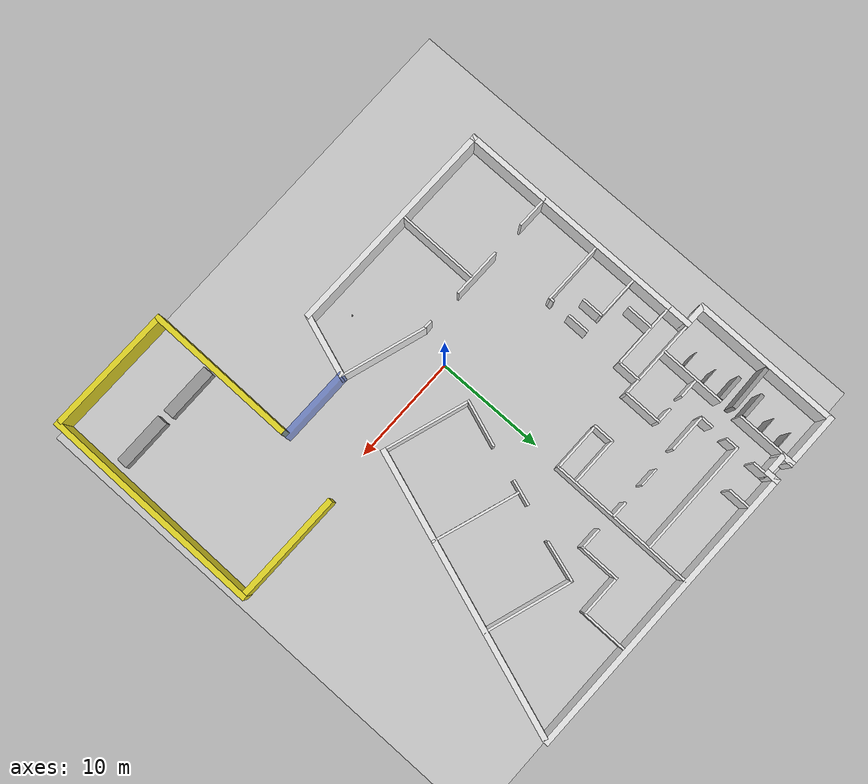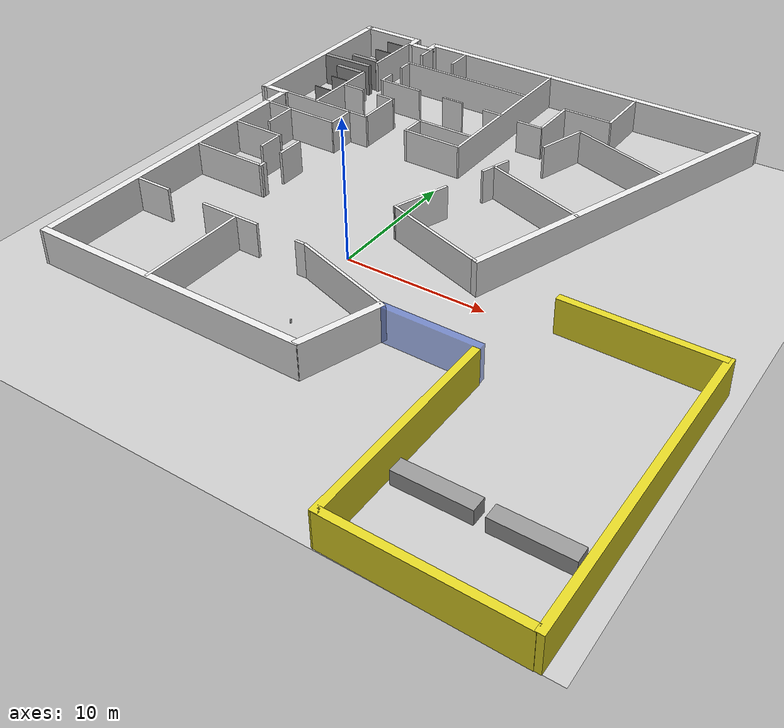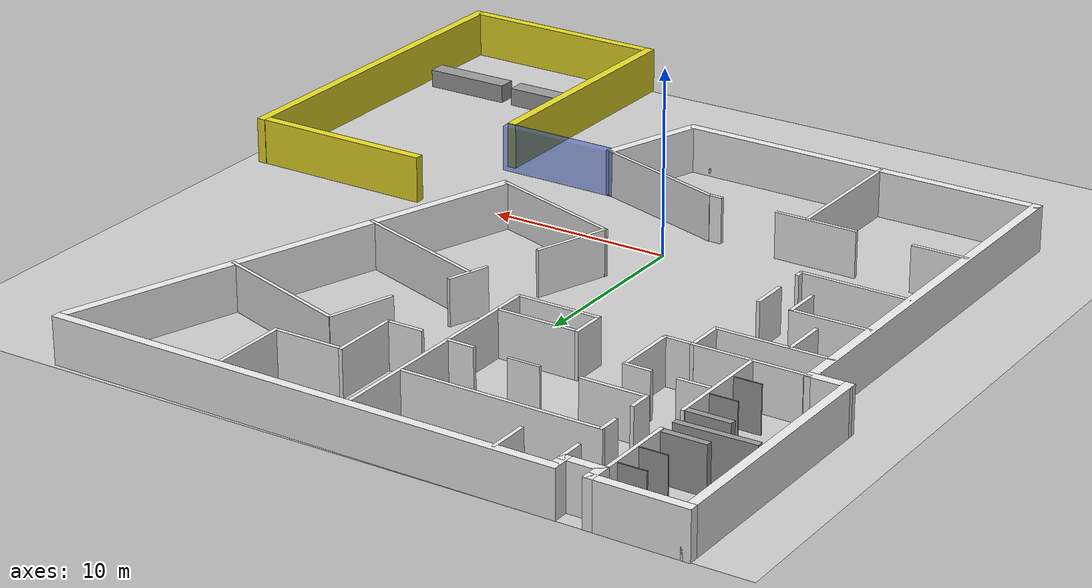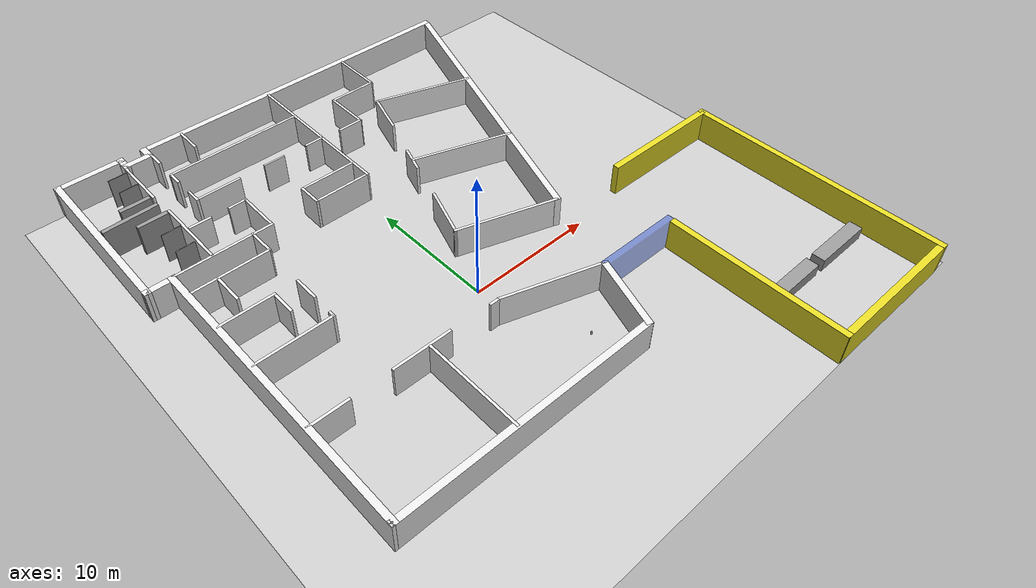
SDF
<sdf version="1.7">
 <world name="default">
  <light name="sun" type="directional">
   <pose>0 0 10 0 -0 0</pose>
   <diffuse>0.8 0.8 0.8 1</diffuse>
   <specular>0.2 0.2 0.2 1</specular>
   <attenuation>
    <range>1000</range>
    <constant>0.9</constant>
    <linear>0.01</linear>
    <quadratic>0.001</quadratic>
   </attenuation>
   <direction>-0.5 0.1 -0.9</direction>
   <spot><inner_angle>0</inner_angle><outer_angle>0</outer_angle><falloff>0</falloff></spot>
  </light>
  <gravity>0 0 -9.8</gravity>
  <magnetic_field>6e-06 2.3e-05 -4.2e-05</magnetic_field>
  <atmosphere type="adiabatic"/>
  <physics type="ode">
   <max_step_size>0.001</max_step_size>
   <real_time_factor>1</real_time_factor>
   <real_time_update_rate>1000</real_time_update_rate>
  </physics>
  <scene><ambient>0.4 0.4 0.4 1</ambient><background>0.7 0.7 0.7 1</background><shadows>1</shadows></scene>
  <spherical_coordinates>
   <surface_model>EARTH_WGS84</surface_model>
   <latitude_deg>0</latitude_deg>
   <longitude_deg>0</longitude_deg>
   <elevation>0</elevation>
   <heading_deg>0</heading_deg>
  </spherical_coordinates>
  <model name="hospital_wall">
   <pose>3.70516 3.23402 0 0 -0 -1.57977</pose>
   <link name="Wall_0">
    <collision name="Wall_0_Collision">
     <geometry><box><size>27.85 0.5 2.5</size></box></geometry>
     <pose>0 0 1.25 0 -0 0</pose>
    </collision>
    <visual name="Wall_0_Visual">
     <pose>0 0 1.25 0 -0 0</pose>
     <geometry><box><size>27.85 0.5 2.5</size></box></geometry>
     <material>
      <script><uri>file://media/materials/scripts/gazebo.material</uri><name>Gazebo/White</name></script>
      <ambient>1 1 1 1</ambient>
     </material>
     <meta><layer>0</layer></meta>
    </visual>
    <pose>-22.6945 -0.556827 0 0 -0 -1.57078</pose>
   </link>
   <link name="Wall_101">
    <collision name="Wall_101_Collision">
     <geometry><box><size>1.25 0.2 2.5</size></box></geometry>
     <pose>0 0 1.25 0 -0 0</pose>
    </collision>
    <visual name="Wall_101_Visual">
     <pose>0 0 1.25 0 -0 0</pose>
     <geometry><box><size>1.25 0.2 2.5</size></box></geometry>
     <material>
      <script><uri>file://media/materials/scripts/gazebo.material</uri><name>Gazebo/White</name></script>
      <ambient>1 1 1 1</ambient>
     </material>
     <meta><layer>0</layer></meta>
    </visual>
    <pose>-18.1899 -14.0971 0 0 -0 3.14159</pose>
   </link>
   <link name="Wall_103">
    <collision name="Wall_103_Collision">
     <geometry><box><size>1.30009 0.2 2.5</size></box></geometry>
     <pose>0 0 1.25 0 -0 0</pose>
    </collision>
    <visual name="Wall_103_Visual">
     <pose>0 0 1.25 0 -0 0</pose>
     <geometry><box><size>1.30009 0.2 2.5</size></box></geometry>
     <material>
      <script><uri>file://media/materials/scripts/gazebo.material</uri><name>Gazebo/White</name></script>
      <ambient>1 1 1 1</ambient>
     </material>
     <meta><layer>0</layer></meta>
    </visual>
    <pose>-15.5522 -14.0461 0 0 -0 0</pose>
   </link>
   <link name="Wall_105">
    <collision name="Wall_105_Collision">
     <geometry><box><size>3.5 0.2 2.5</size></box></geometry>
     <pose>0 0 1.25 0 -0 0</pose>
    </collision>
    <visual name="Wall_105_Visual">
     <pose>0 0 1.25 0 -0 0</pose>
     <geometry><box><size>3.5 0.2 2.5</size></box></geometry>
     <material>
      <script><uri>file://media/materials/scripts/gazebo.material</uri><name>Gazebo/White</name></script>
      <ambient>1 1 1 1</ambient>
     </material>
     <meta><layer>0</layer></meta>
    </visual>
    <pose>-15.0024 -12.3017 0 0 -0 -1.5708</pose>
   </link>
   <link name="Wall_107">
    <collision name="Wall_107_Collision">
     <geometry><box><size>2.25 0.2 2.5</size></box></geometry>
     <pose>0 0 1.25 0 -0 0</pose>
    </collision>
    <visual name="Wall_107_Visual">
     <pose>0 0 1.25 0 -0 0</pose>
     <geometry><box><size>2.25 0.2 2.5</size></box></geometry>
     <material>
      <script><uri>file://media/materials/scripts/gazebo.material</uri><name>Gazebo/White</name></script>
      <ambient>1 1 1 1</ambient>
     </material>
     <meta><layer>0</layer></meta>
    </visual>
    <pose>-21.5791 -11.151 0 0 -0 3.14159</pose>
   </link>
   <link name="Wall_109">
    <collision name="Wall_109_Collision">
     <geometry><box><size>1.5 0.2 2.5</size></box></geometry>
     <pose>0 0 1.25 0 -0 0</pose>
    </collision>
    <visual name="Wall_109_Visual">
     <pose>0 0 1.25 0 -0 0</pose>
     <geometry><box><size>1.5 0.2 2.5</size></box></geometry>
     <material>
      <script><uri>file://media/materials/scripts/gazebo.material</uri><name>Gazebo/White</name></script>
      <ambient>1 1 1 1</ambient>
     </material>
     <meta><layer>0</layer></meta>
    </visual>
    <pose>-12.697 -12.138 0 0 -0 1.5708</pose>
   </link>
   <link name="Wall_111">
    <collision name="Wall_111_Collision">
     <geometry><box><size>6.05 0.2 2.5</size></box></geometry>
     <pose>0 0 1.25 0 -0 0</pose>
    </collision>
    <visual name="Wall_111_Visual">
     <pose>0 0 1.25 0 -0 0</pose>
     <geometry><box><size>6.05 0.2 2.5</size></box></geometry>
     <material>
      <script><uri>file://media/materials/scripts/gazebo.material</uri><name>Gazebo/White</name></script>
      <ambient>1 1 1 1</ambient>
     </material>
     <meta><layer>0</layer></meta>
    </visual>
    <pose>-12.3324 -16.088 0 0 -0 0</pose>
   </link>
   <link name="Wall_113">
    <collision name="Wall_113_Collision">
     <geometry><box><size>1.75 0.2 2.5</size></box></geometry>
     <pose>0 0 1.25 0 -0 0</pose>
    </collision>
    <visual name="Wall_113_Visual">
     <pose>0 0 1.25 0 -0 0</pose>
     <geometry><box><size>1.75 0.2 2.5</size></box></geometry>
     <material>
      <script><uri>file://media/materials/scripts/gazebo.material</uri><name>Gazebo/White</name></script>
      <ambient>1 1 1 1</ambient>
     </material>
     <meta><layer>0</layer></meta>
    </visual>
    <pose>-12.7232 -15.1011 0 0 -0 -1.5708</pose>
   </link>
   <link name="Wall_115">
    <collision name="Wall_115_Collision">
     <geometry><box><size>4.5 0.2 2.5</size></box></geometry>
     <pose>0 0 1.25 0 -0 0</pose>
    </collision>
    <visual name="Wall_115_Visual">
     <pose>0 0 1.25 0 -0 0</pose>
     <geometry><box><size>4.5 0.2 2.5</size></box></geometry>
     <material>
      <script><uri>file://media/materials/scripts/gazebo.material</uri><name>Gazebo/White</name></script>
      <ambient>1 1 1 1</ambient>
     </material>
     <meta><layer>0</layer></meta>
    </visual>
    <pose>-10.9872 -5.67707 0 0 -0 1.5708</pose>
   </link>
   <link name="Wall_117">
    <collision name="Wall_117_Collision">
     <geometry><box><size>4.5 0.2 2.5</size></box></geometry>
     <pose>0 0 1.25 0 -0 0</pose>
    </collision>
    <visual name="Wall_117_Visual">
     <pose>0 0 1.25 0 -0 0</pose>
     <geometry><box><size>4.5 0.2 2.5</size></box></geometry>
     <material>
      <script><uri>file://media/materials/scripts/gazebo.material</uri><name>Gazebo/White</name></script>
      <ambient>1 1 1 1</ambient>
     </material>
     <meta><layer>0</layer></meta>
    </visual>
    <pose>-9.1948 -5.67532 0 0 -0 1.5708</pose>
   </link>
   <link name="Wall_12">
    <collision name="Wall_12_Collision">
     <geometry><box><size>14 0.5 2.5</size></box></geometry>
     <pose>0 0 1.25 0 -0 0</pose>
    </collision>
    <visual name="Wall_12_Visual">
     <pose>0 0 1.25 0 -0 0</pose>
     <geometry><box><size>14 0.5 2.5</size></box></geometry>
     <material>
      <script><uri>file://media/materials/scripts/gazebo.material</uri><name>Gazebo/White</name></script>
      <ambient>1 1 1 1</ambient>
     </material>
     <meta><layer>0</layer></meta>
    </visual>
    <pose>-15.9442 -20.8921 0 0 -0 0</pose>
   </link>
   <link name="Wall_120">
    <collision name="Wall_120_Collision">
     <geometry><box><size>2 0.2 2.5</size></box></geometry>
     <pose>0 0 1.25 0 -0 0</pose>
    </collision>
    <visual name="Wall_120_Visual">
     <pose>0 0 1.25 0 -0 0</pose>
     <geometry><box><size>2 0.2 2.5</size></box></geometry>
     <material>
      <script><uri>file://media/materials/scripts/gazebo.material</uri><name>Gazebo/White</name></script>
      <ambient>1 1 1 1</ambient>
     </material>
     <meta><layer>0</layer></meta>
    </visual>
    <pose>-10.0892 -7.82789 0 0 -0 0</pose>
   </link>
   <link name="Wall_122">
    <collision name="Wall_122_Collision">
     <geometry><box><size>2.5 0.2 2.5</size></box></geometry>
     <pose>0 0 1.25 0 -0 0</pose>
    </collision>
    <visual name="Wall_122_Visual">
     <pose>0 0 1.25 0 -0 0</pose>
     <geometry><box><size>2.5 0.2 2.5</size></box></geometry>
     <material>
      <script><uri>file://media/materials/scripts/gazebo.material</uri><name>Gazebo/White</name></script>
      <ambient>1 1 1 1</ambient>
     </material>
     <meta><layer>0</layer></meta>
    </visual>
    <pose>-6.02163 -16.8589 0 0 -0 3.14159</pose>
   </link>
   <link name="Wall_124">
    <collision name="Wall_124_Collision">
     <geometry><box><size>4.30001 0.2 2.5</size></box></geometry>
     <pose>0 0 1.25 0 -0 0</pose>
    </collision>
    <visual name="Wall_124_Visual">
     <pose>0 0 1.25 0 -0 0</pose>
     <geometry><box><size>4.30001 0.2 2.5</size></box></geometry>
     <material>
      <script><uri>file://media/materials/scripts/gazebo.material</uri><name>Gazebo/White</name></script>
      <ambient>1 1 1 1</ambient>
     </material>
     <meta><layer>0</layer></meta>
    </visual>
    <pose>-3.60823 -16.9331 0 0 -0 -1.5708</pose>
   </link>
   <link name="Wall_126">
    <collision name="Wall_126_Collision">
     <geometry><box><size>2 0.2 2.5</size></box></geometry>
     <pose>0 0 1.25 0 -0 0</pose>
    </collision>
    <visual name="Wall_126_Visual">
     <pose>0 0 1.25 0 -0 0</pose>
     <geometry><box><size>2 0.2 2.5</size></box></geometry>
     <material>
      <script><uri>file://media/materials/scripts/gazebo.material</uri><name>Gazebo/White</name></script>
      <ambient>1 1 1 1</ambient>
     </material>
     <meta><layer>0</layer></meta>
    </visual>
    <pose>-2.64995 -14.8874 0 0 -0 3.14159</pose>
   </link>
   <link name="Wall_128">
    <collision name="Wall_128_Collision">
     <geometry><box><size>0.55 0.2 2.5</size></box></geometry>
     <pose>0 0 1.25 0 -0 0</pose>
    </collision>
    <visual name="Wall_128_Visual">
     <pose>0 0 1.25 0 -0 0</pose>
     <geometry><box><size>0.55 0.2 2.5</size></box></geometry>
     <material>
      <script><uri>file://media/materials/scripts/gazebo.material</uri><name>Gazebo/White</name></script>
      <ambient>1 1 1 1</ambient>
     </material>
     <meta><layer>0</layer></meta>
    </visual>
    <pose>0.233926 -13.1551 0 0 -0 0</pose>
   </link>
   <link name="Wall_130">
    <collision name="Wall_130_Collision">
     <geometry><box><size>6 0.2 2.5</size></box></geometry>
     <pose>0 0 1.25 0 -0 0</pose>
    </collision>
    <visual name="Wall_130_Visual">
     <pose>0 0 1.25 0 -0 0</pose>
     <geometry><box><size>6 0.2 2.5</size></box></geometry>
     <material>
      <script><uri>file://media/materials/scripts/gazebo.material</uri><name>Gazebo/White</name></script>
      <ambient>1 1 1 1</ambient>
     </material>
     <meta><layer>0</layer></meta>
    </visual>
    <pose>0.407767 -16.0541 0 0 -0 1.5708</pose>
   </link>
   <link name="Wall_132">
    <collision name="Wall_132_Collision">
     <geometry><box><size>4.25 0.2 2.5</size></box></geometry>
     <pose>0 0 1.25 0 -0 0</pose>
    </collision>
    <visual name="Wall_132_Visual">
     <pose>0 0 1.25 0 -0 0</pose>
     <geometry><box><size>4.25 0.2 2.5</size></box></geometry>
     <material>
      <script><uri>file://media/materials/scripts/gazebo.material</uri><name>Gazebo/White</name></script>
      <ambient>1 1 1 1</ambient>
     </material>
     <meta><layer>0</layer></meta>
    </visual>
    <pose>-20.4132 3.82393 0 0 -0 0</pose>
   </link>
   <link name="Wall_134">
    <collision name="Wall_134_Collision">
     <geometry><box><size>3.75 0.2 2.5</size></box></geometry>
     <pose>0 0 1.25 0 -0 0</pose>
    </collision>
    <visual name="Wall_134_Visual">
     <pose>0 0 1.25 0 -0 0</pose>
     <geometry><box><size>3.75 0.2 2.5</size></box></geometry>
     <material>
      <script><uri>file://media/materials/scripts/gazebo.material</uri><name>Gazebo/White</name></script>
      <ambient>1 1 1 1</ambient>
     </material>
     <meta><layer>0</layer></meta>
    </visual>
    <pose>-18.387 1.94161 0 0 -0 1.5708</pose>
   </link>
   <link name="Wall_136">
    <collision name="Wall_136_Collision">
     <geometry><box><size>3.75 0.2 2.5</size></box></geometry>
     <pose>0 0 1.25 0 -0 0</pose>
    </collision>
    <visual name="Wall_136_Visual">
     <pose>0 0 1.25 0 -0 0</pose>
     <geometry><box><size>3.75 0.2 2.5</size></box></geometry>
     <material>
      <script><uri>file://media/materials/scripts/gazebo.material</uri><name>Gazebo/White</name></script>
      <ambient>1 1 1 1</ambient>
     </material>
     <meta><layer>0</layer></meta>
    </visual>
    <pose>-16.6135 0.087292 0 0 -0 3.14159</pose>
   </link>
   <link name="Wall_138">
    <collision name="Wall_138_Collision">
     <geometry><box><size>2 0.2 2.5</size></box></geometry>
     <pose>0 0 1.25 0 -0 0</pose>
    </collision>
    <visual name="Wall_138_Visual">
     <pose>0 0 1.25 0 -0 0</pose>
     <geometry><box><size>2 0.2 2.5</size></box></geometry>
     <material>
      <script><uri>file://media/materials/scripts/gazebo.material</uri><name>Gazebo/White</name></script>
      <ambient>1 1 1 1</ambient>
     </material>
     <meta><layer>0</layer></meta>
    </visual>
    <pose>-14.8374 -0.881729 0 0 -0 1.5708</pose>
   </link>
   <link name="Wall_15">
    <collision name="Wall_15_Collision">
     <geometry><box><size>2.3504 0.5 2.5</size></box></geometry>
     <pose>0 0 1.25 0 -0 0</pose>
    </collision>
    <visual name="Wall_15_Visual">
     <pose>0 0 1.25 0 -0 0</pose>
     <geometry><box><size>2.3504 0.5 2.5</size></box></geometry>
     <material>
      <script><uri>file://media/materials/scripts/gazebo.material</uri><name>Gazebo/White</name></script>
      <ambient>1 1 1 1</ambient>
     </material>
     <meta><layer>0</layer></meta>
    </visual>
    <pose>-9.19703 -19.9669 0 0 -0 1.57382</pose>
   </link>
   <link name="Wall_17">
    <collision name="Wall_17_Collision">
     <geometry><box><size>23.6058 0.5 2.5</size></box></geometry>
     <pose>0 0 1.25 0 -0 0</pose>
    </collision>
    <visual name="Wall_17_Visual">
     <pose>0 0 1.25 0 -0 0</pose>
     <geometry><box><size>23.6058 0.5 2.5</size></box></geometry>
     <material>
      <script><uri>file://media/materials/scripts/gazebo.material</uri><name>Gazebo/White</name></script>
      <ambient>1 1 1 1</ambient>
     </material>
     <meta><layer>0</layer></meta>
    </visual>
    <pose>2.35297 -19.0214 0 0 -0 0.004195</pose>
   </link>
   <link name="Wall_19">
    <collision name="Wall_19_Collision">
     <geometry><box><size>20.4027 0.5 2.5</size></box></geometry>
     <pose>0 0 1.25 0 -0 0</pose>
    </collision>
    <visual name="Wall_19_Visual">
     <pose>0 0 1.25 0 -0 0</pose>
     <geometry><box><size>20.4027 0.5 2.5</size></box></geometry>
     <material>
      <script><uri>file://media/materials/scripts/gazebo.material</uri><name>Gazebo/White</name></script>
      <ambient>1 1 1 1</ambient>
     </material>
     <meta><layer>0</layer></meta>
    </visual>
    <pose>13.9058 -8.99341 0 0 -0 1.5708</pose>
   </link>
   <link name="Wall_2">
    <collision name="Wall_2_Collision">
     <geometry><box><size>1.34953 0.5 2.5</size></box></geometry>
     <pose>0 0 1.25 0 -0 0</pose>
    </collision>
    <visual name="Wall_2_Visual">
     <pose>0 0 1.25 0 -0 0</pose>
     <geometry><box><size>1.34953 0.5 2.5</size></box></geometry>
     <material>
      <script><uri>file://media/materials/scripts/gazebo.material</uri><name>Gazebo/White</name></script>
      <ambient>1 1 1 1</ambient>
     </material>
     <meta><layer>0</layer></meta>
    </visual>
    <pose>-22.2692 -14.2321 0 0 -0 0</pose>
   </link>
   <link name="Wall_21">
    <collision name="Wall_21_Collision">
     <geometry><box><size>25.994 0.5 2.5</size></box></geometry>
     <pose>0 0 1.25 0 -0 0</pose>
    </collision>
    <visual name="Wall_21_Visual">
     <pose>0 0 1.25 0 -0 0</pose>
     <geometry><box><size>25.994 0.5 2.5</size></box></geometry>
     <material>
      <script><uri>file://media/materials/scripts/gazebo.material</uri><name>Gazebo/White</name></script>
      <ambient>1 1 1 1</ambient>
     </material>
     <meta><layer>0</layer></meta>
    </visual>
    <pose>-10.1882 9.03243 0 0 -0 -0.321217</pose>
   </link>
   <link name="Wall_23">
    <collision name="Wall_23_Collision">
     <geometry><box><size>5.92015 0.5 2.5</size></box></geometry>
     <pose>0 0 1.25 0 -0 0</pose>
    </collision>
    <visual name="Wall_23_Visual">
     <pose>0 0 1.25 0 -0 0</pose>
     <geometry><box><size>5.92015 0.5 2.5</size></box></geometry>
     <material>
      <script><uri>file://media/materials/scripts/gazebo.material</uri><name>Gazebo/White</name></script>
      <ambient>1 1 1 1</ambient>
     </material>
     <meta><layer>0</layer></meta>
    </visual>
    <pose>11.2768 1.89793 0 0 -0 -0.322917</pose>
   </link>
   <link name="Wall_25">
    <collision name="Wall_25_Collision">
     <geometry><box><size>10.25 0.5 2.5</size></box></geometry>
     <pose>0 0 1.25 0 -0 0</pose>
    </collision>
    <visual name="Wall_25_Visual">
     <pose>0 0 1.25 0 -0 0</pose>
     <geometry><box><size>10.25 0.5 2.5</size></box></geometry>
     <material>
      <script><uri>file://media/materials/scripts/gazebo.material</uri><name>Gazebo/Yellow</name></script>
      <ambient>1 1 1 1</ambient>
     </material>
     <meta><layer>0</layer></meta>
    </visual>
    <pose>2.44213 15.8139 0 0 -0 1.5708</pose>
   </link>
   <link name="Wall_27">
    <collision name="Wall_27_Collision">
     <geometry><box><size>6.85 0.5 2.5</size></box></geometry>
     <pose>0 0 1.25 0 -0 0</pose>
    </collision>
    <visual name="Wall_27_Visual">
     <pose>0 0 1.25 0 -0 0</pose>
     <geometry><box><size>6.85 0.5 2.5</size></box></geometry>
     <material>
      <script><uri>file://media/materials/scripts/gazebo.material</uri><name>Gazebo/BlueTransparent</name></script>
      <ambient>1 1 1 1</ambient>
     </material>
     <meta><layer>0</layer></meta>
    </visual>
    <pose>8.64948 6.06327 0 0 -0 1.5708</pose>
   </link>
   <link name="Wall_29">
    <collision name="Wall_29_Collision">
     <geometry><box><size>14 0.5 2.5</size></box></geometry>
     <pose>0 0 1.25 0 -0 0</pose>
    </collision>
    <visual name="Wall_29_Visual">
     <pose>0 0 1.25 0 -0 0</pose>
     <geometry><box><size>14 0.5 2.5</size></box></geometry>
     <material>
      <script><uri>file://media/materials/scripts/gazebo.material</uri><name>Gazebo/Yellow</name></script>
      <ambient>1 1 1 1</ambient>
     </material>
     <meta><layer>0</layer></meta>
    </visual>
    <pose>15.9259 9.2975 0 0 -0 0</pose>
   </link>
   <link name="Wall_31">
    <collision name="Wall_31_Collision">
     <geometry><box><size>11.6 0.5 2.5</size></box></geometry>
     <pose>0 0 1.25 0 -0 0</pose>
    </collision>
    <visual name="Wall_31_Visual">
     <pose>0 0 1.25 0 -0 0</pose>
     <geometry><box><size>11.6 0.5 2.5</size></box></geometry>
     <material>
      <script><uri>file://media/materials/scripts/gazebo.material</uri><name>Gazebo/Yellow</name></script>
      <ambient>1 1 1 1</ambient>
     </material>
     <meta><layer>0</layer></meta>
    </visual>
    <pose>22.6947 14.9589 0 0 -0 1.5708</pose>
   </link>
   <link name="Wall_33">
    <collision name="Wall_33_Collision">
     <geometry><box><size>20.75 0.5 2.5</size></box></geometry>
     <pose>0 0 1.25 0 -0 0</pose>
    </collision>
    <visual name="Wall_33_Visual">
     <pose>0 0 1.25 0 -0 0</pose>
     <geometry><box><size>20.75 0.5 2.5</size></box></geometry>
     <material>
      <script><uri>file://media/materials/scripts/gazebo.material</uri><name>Gazebo/Yellow</name></script>
      <ambient>1 1 1 1</ambient>
     </material>
     <meta><layer>0</layer></meta>
    </visual>
    <pose>12.5443 20.8928 0 0 -0 3.14159</pose>
   </link>
   <link name="Wall_36">
    <collision name="Wall_36_Collision">
     <geometry><box><size>8.02379 0.2 2.5</size></box></geometry>
     <pose>0 0 1.25 0 -0 0</pose>
    </collision>
    <visual name="Wall_36_Visual">
     <pose>0 0 1.25 0 -0 0</pose>
     <geometry><box><size>8.02379 0.2 2.5</size></box></geometry>
     <material>
      <script><uri>file://media/materials/scripts/gazebo.material</uri><name>Gazebo/White</name></script>
      <ambient>1 1 1 1</ambient>
     </material>
     <meta><layer>0</layer></meta>
    </visual>
    <pose>0.840579 1.20633 0 0 -0 1.26174</pose>
   </link>
   <link name="Wall_38">
    <collision name="Wall_38_Collision">
     <geometry><box><size>7.84014 0.2 2.5</size></box></geometry>
     <pose>0 0 1.25 0 -0 0</pose>
    </collision>
    <visual name="Wall_38_Visual">
     <pose>0 0 1.25 0 -0 0</pose>
     <geometry><box><size>7.84014 0.2 2.5</size></box></geometry>
     <material>
      <script><uri>file://media/materials/scripts/gazebo.material</uri><name>Gazebo/White</name></script>
      <ambient>1 1 1 1</ambient>
     </material>
     <meta><layer>0</layer></meta>
    </visual>
    <pose>7.39677 -0.912771 0 0 -0 1.26775</pose>
   </link>
   <link name="Wall_40">
    <collision name="Wall_40_Collision">
     <geometry><box><size>0.75 0.2 2.5</size></box></geometry>
     <pose>0 0 1.25 0 -0 0</pose>
    </collision>
    <visual name="Wall_40_Visual">
     <pose>0 0 1.25 0 -0 0</pose>
     <geometry><box><size>0.75 0.2 2.5</size></box></geometry>
     <material>
      <script><uri>file://media/materials/scripts/gazebo.material</uri><name>Gazebo/White</name></script>
      <ambient>1 1 1 1</ambient>
     </material>
     <meta><layer>0</layer></meta>
    </visual>
    <pose>6.25677 -4.94668 0 0 -0 1.5708</pose>
   </link>
   <link name="Wall_42">
    <collision name="Wall_42_Collision">
     <geometry><box><size>4.54982 0.2 2.5</size></box></geometry>
     <pose>0 0 1.25 0 -0 0</pose>
    </collision>
    <visual name="Wall_42_Visual">
     <pose>0 0 1.25 0 -0 0</pose>
     <geometry><box><size>4.54982 0.2 2.5</size></box></geometry>
     <material>
      <script><uri>file://media/materials/scripts/gazebo.material</uri><name>Gazebo/White</name></script>
      <ambient>1 1 1 1</ambient>
     </material>
     <meta><layer>0</layer></meta>
    </visual>
    <pose>6.18977 -10.7381 0 0 -0 -1.5708</pose>
   </link>
   <link name="Wall_45">
    <collision name="Wall_45_Collision">
     <geometry><box><size>3.05045 0.2 2.5</size></box></geometry>
     <pose>0 0 1.25 0 -0 0</pose>
    </collision>
    <visual name="Wall_45_Visual">
     <pose>0 0 1.25 0 -0 0</pose>
     <geometry><box><size>3.05045 0.2 2.5</size></box></geometry>
     <material>
      <script><uri>file://media/materials/scripts/gazebo.material</uri><name>Gazebo/White</name></script>
      <ambient>1 1 1 1</ambient>
     </material>
     <meta><layer>0</layer></meta>
    </visual>
    <pose>6.19877 -17.5651 0 0 -0 -1.5708</pose>
   </link>
   <link name="Wall_47">
    <collision name="Wall_47_Collision">
     <geometry><box><size>7.79995 0.2 2.5</size></box></geometry>
     <pose>0 0 1.25 0 -0 0</pose>
    </collision>
    <visual name="Wall_47_Visual">
     <pose>0 0 1.25 0 -0 0</pose>
     <geometry><box><size>7.79995 0.2 2.5</size></box></geometry>
     <material>
      <script><uri>file://media/materials/scripts/gazebo.material</uri><name>Gazebo/White</name></script>
      <ambient>1 1 1 1</ambient>
     </material>
     <meta><layer>0</layer></meta>
    </visual>
    <pose>10.1328 -10.2061 0 0 -0 0</pose>
   </link>
   <link name="Wall_5">
    <collision name="Wall_5_Collision">
     <geometry><box><size>2.35 0.5 2.5</size></box></geometry>
     <pose>0 0 1.25 0 -0 0</pose>
    </collision>
    <visual name="Wall_5_Visual">
     <pose>0 0 1.25 0 -0 0</pose>
     <geometry><box><size>2.35 0.5 2.5</size></box></geometry>
     <material>
      <script><uri>file://media/materials/scripts/gazebo.material</uri><name>Gazebo/White</name></script>
      <ambient>1 1 1 1</ambient>
     </material>
     <meta><layer>0</layer></meta>
    </visual>
    <pose>-21.8442 -15.1571 0 0 -0 -1.5708</pose>
   </link>
   <link name="Wall_58">
    <collision name="Wall_58_Collision">
     <geometry><box><size>4.27097 0.2 2.5</size></box></geometry>
     <pose>0 0 1.25 0 -0 0</pose>
    </collision>
    <visual name="Wall_58_Visual">
     <pose>0 0 1.25 0 -0 0</pose>
     <geometry><box><size>4.27097 0.2 2.5</size></box></geometry>
     <material>
      <script><uri>file://media/materials/scripts/gazebo.material</uri><name>Gazebo/White</name></script>
      <ambient>1 1 1 1</ambient>
     </material>
     <meta><layer>0</layer></meta>
    </visual>
    <pose>-2.27423 -1.85857 0 0 -0 -0.330994</pose>
   </link>
   <link name="Wall_60">
    <collision name="Wall_60_Collision">
     <geometry><box><size>2.33146 0.2 2.5</size></box></geometry>
     <pose>0 0 1.25 0 -0 0</pose>
    </collision>
    <visual name="Wall_60_Visual">
     <pose>0 0 1.25 0 -0 0</pose>
     <geometry><box><size>2.33146 0.2 2.5</size></box></geometry>
     <material>
      <script><uri>file://media/materials/scripts/gazebo.material</uri><name>Gazebo/White</name></script>
      <ambient>1 1 1 1</ambient>
     </material>
     <meta><layer>0</layer></meta>
    </visual>
    <pose>-8.34323 0.115928 0 0 -0 -0.312849</pose>
   </link>
   <link name="Wall_65">
    <collision name="Wall_65_Collision">
     <geometry><box><size>8.18103 0.2 2.5</size></box></geometry>
     <pose>0 0 1.25 0 -0 0</pose>
    </collision>
    <visual name="Wall_65_Visual">
     <pose>0 0 1.25 0 -0 0</pose>
     <geometry><box><size>8.18103 0.2 2.5</size></box></geometry>
     <material>
      <script><uri>file://media/materials/scripts/gazebo.material</uri><name>Gazebo/White</name></script>
      <ambient>1 1 1 1</ambient>
     </material>
     <meta><layer>0</layer></meta>
    </visual>
    <pose>-6.99923 3.88693 0 0 -0 1.25325</pose>
   </link>
   <link name="Wall_68">
    <collision name="Wall_68_Collision">
     <geometry><box><size>8.11404 0.2 2.5</size></box></geometry>
     <pose>0 0 1.25 0 -0 0</pose>
    </collision>
    <visual name="Wall_68_Visual">
     <pose>0 0 1.25 0 -0 0</pose>
     <geometry><box><size>8.11404 0.2 2.5</size></box></geometry>
     <material>
      <script><uri>file://media/materials/scripts/gazebo.material</uri><name>Gazebo/White</name></script>
      <ambient>1 1 1 1</ambient>
     </material>
     <meta><layer>0</layer></meta>
    </visual>
    <pose>-14.7317 6.38193 0 0 -0 1.25964</pose>
   </link>
   <link name="Wall_7">
    <collision name="Wall_7_Collision">
     <geometry><box><size>1.35 0.5 2.5</size></box></geometry>
     <pose>0 0 1.25 0 -0 0</pose>
    </collision>
    <visual name="Wall_7_Visual">
     <pose>0 0 1.25 0 -0 0</pose>
     <geometry><box><size>1.35 0.5 2.5</size></box></geometry>
     <material>
      <script><uri>file://media/materials/scripts/gazebo.material</uri><name>Gazebo/White</name></script>
      <ambient>1 1 1 1</ambient>
     </material>
     <meta><layer>0</layer></meta>
    </visual>
    <pose>-22.2692 -16.0821 0 0 -0 3.14159</pose>
   </link>
   <link name="Wall_70">
    <collision name="Wall_70_Collision">
     <geometry><box><size>3.72528 0.2 2.5</size></box></geometry>
     <pose>0 0 1.25 0 -0 0</pose>
    </collision>
    <visual name="Wall_70_Visual">
     <pose>0 0 1.25 0 -0 0</pose>
     <geometry><box><size>3.72528 0.2 2.5</size></box></geometry>
     <material>
      <script><uri>file://media/materials/scripts/gazebo.material</uri><name>Gazebo/White</name></script>
      <ambient>1 1 1 1</ambient>
     </material>
     <meta><layer>0</layer></meta>
    </visual>
    <pose>-14.2362 2.09543 0 0 -0 -0.292055</pose>
   </link>
   <link name="Wall_72">
    <collision name="Wall_72_Collision">
     <geometry><box><size>6.25 0.2 2.5</size></box></geometry>
     <pose>0 0 1.25 0 -0 0</pose>
    </collision>
    <visual name="Wall_72_Visual">
     <pose>0 0 1.25 0 -0 0</pose>
     <geometry><box><size>6.25 0.2 2.5</size></box></geometry>
     <material>
      <script><uri>file://media/materials/scripts/gazebo.material</uri><name>Gazebo/White</name></script>
      <ambient>1 1 1 1</ambient>
     </material>
     <meta><layer>0</layer></meta>
    </visual>
    <pose>-7.24323 -16.0931 0 0 -0 -1.5708</pose>
   </link>
   <link name="Wall_77">
    <collision name="Wall_77_Collision">
     <geometry><box><size>6.25 0.2 2.5</size></box></geometry>
     <pose>0 0 1.25 0 -0 0</pose>
    </collision>
    <visual name="Wall_77_Visual">
     <pose>0 0 1.25 0 -0 0</pose>
     <geometry><box><size>6.25 0.2 2.5</size></box></geometry>
     <material>
      <script><uri>file://media/materials/scripts/gazebo.material</uri><name>Gazebo/White</name></script>
      <ambient>1 1 1 1</ambient>
     </material>
     <meta><layer>0</layer></meta>
    </visual>
    <pose>-9.29023 -16.0101 0 0 -0 1.5708</pose>
   </link>
   <link name="Wall_81">
    <collision name="Wall_81_Collision">
     <geometry><box><size>2.25 0.2 2.5</size></box></geometry>
     <pose>0 0 1.25 0 -0 0</pose>
    </collision>
    <visual name="Wall_81_Visual">
     <pose>0 0 1.25 0 -0 0</pose>
     <geometry><box><size>2.25 0.2 2.5</size></box></geometry>
     <material>
      <script><uri>file://media/materials/scripts/gazebo.material</uri><name>Gazebo/White</name></script>
      <ambient>1 1 1 1</ambient>
     </material>
     <meta><layer>0</layer></meta>
    </visual>
    <pose>-8.2697 -12.9678 0 0 -0 0</pose>
   </link>
   <link name="Wall_83">
    <collision name="Wall_83_Collision">
     <geometry><box><size>2.04976 0.2 2.5</size></box></geometry>
     <pose>0 0 1.25 0 -0 0</pose>
    </collision>
    <visual name="Wall_83_Visual">
     <pose>0 0 1.25 0 -0 0</pose>
     <geometry><box><size>2.04976 0.2 2.5</size></box></geometry>
     <material>
      <script><uri>file://media/materials/scripts/gazebo.material</uri><name>Gazebo/White</name></script>
      <ambient>1 1 1 1</ambient>
     </material>
     <meta><layer>0</layer></meta>
    </visual>
    <pose>-2.65423 -13.1321 0 0 -0 0</pose>
   </link>
   <link name="Wall_85">
    <collision name="Wall_85_Collision">
     <geometry><box><size>1.55 0.2 2.5</size></box></geometry>
     <pose>0 0 1.25 0 -0 0</pose>
    </collision>
    <visual name="Wall_85_Visual">
     <pose>0 0 1.25 0 -0 0</pose>
     <geometry><box><size>1.55 0.2 2.5</size></box></geometry>
     <material>
      <script><uri>file://media/materials/scripts/gazebo.material</uri><name>Gazebo/White</name></script>
      <ambient>1 1 1 1</ambient>
     </material>
     <meta><layer>0</layer></meta>
    </visual>
    <pose>-9.28482 -12.1541 0 0 -0 -1.5708</pose>
   </link>
   <link name="Wall_87">
    <collision name="Wall_87_Collision">
     <geometry><box><size>3.5 0.2 2.5</size></box></geometry>
     <pose>0 0 1.25 0 -0 0</pose>
    </collision>
    <visual name="Wall_87_Visual">
     <pose>0 0 1.25 0 -0 0</pose>
     <geometry><box><size>3.5 0.2 2.5</size></box></geometry>
     <material>
      <script><uri>file://media/materials/scripts/gazebo.material</uri><name>Gazebo/White</name></script>
      <ambient>1 1 1 1</ambient>
     </material>
     <meta><layer>0</layer></meta>
    </visual>
    <pose>-10.9541 -11.492 0 0 -0 0</pose>
   </link>
   <link name="Wall_89">
    <collision name="Wall_89_Collision">
     <geometry><box><size>4.5 0.2 2.5</size></box></geometry>
     <pose>0 0 1.25 0 -0 0</pose>
    </collision>
    <visual name="Wall_89_Visual">
     <pose>0 0 1.25 0 -0 0</pose>
     <geometry><box><size>4.5 0.2 2.5</size></box></geometry>
     <material>
      <script><uri>file://media/materials/scripts/gazebo.material</uri><name>Gazebo/White</name></script>
      <ambient>1 1 1 1</ambient>
     </material>
     <meta><layer>0</layer></meta>
    </visual>
    <pose>-19.4706 -16.2291 0 0 -0 0</pose>
   </link>
   <link name="Wall_9">
    <collision name="Wall_9_Collision">
     <geometry><box><size>5.31023 0.5 2.5</size></box></geometry>
     <pose>0 0 1.25 0 -0 0</pose>
    </collision>
    <visual name="Wall_9_Visual">
     <pose>0 0 1.25 0 -0 0</pose>
     <geometry><box><size>5.31023 0.5 2.5</size></box></geometry>
     <material>
      <script><uri>file://media/materials/scripts/gazebo.material</uri><name>Gazebo/White</name></script>
      <ambient>1 1 1 1</ambient>
     </material>
     <meta><layer>0</layer></meta>
    </visual>
    <pose>-22.6942 -18.4871 0 0 -0 -1.5708</pose>
   </link>
   <link name="Wall_91">
    <collision name="Wall_91_Collision">
     <geometry><box><size>13.5 0.2 2.5</size></box></geometry>
     <pose>0 0 1.25 0 -0 0</pose>
    </collision>
    <visual name="Wall_91_Visual">
     <pose>0 0 1.25 0 -0 0</pose>
     <geometry><box><size>13.5 0.2 2.5</size></box></geometry>
     <material>
      <script><uri>file://media/materials/scripts/gazebo.material</uri><name>Gazebo/White</name></script>
      <ambient>1 1 1 1</ambient>
     </material>
     <meta><layer>0</layer></meta>
    </visual>
    <pose>-15.8452 -3.39907 0 0 -0 0</pose>
   </link>
   <link name="Wall_93">
    <collision name="Wall_93_Collision">
     <geometry><box><size>1.5 0.2 2.5</size></box></geometry>
     <pose>0 0 1.25 0 -0 0</pose>
    </collision>
    <visual name="Wall_93_Visual">
     <pose>0 0 1.25 0 -0 0</pose>
     <geometry><box><size>1.5 0.2 2.5</size></box></geometry>
     <material>
      <script><uri>file://media/materials/scripts/gazebo.material</uri><name>Gazebo/White</name></script>
      <ambient>1 1 1 1</ambient>
     </material>
     <meta><layer>0</layer></meta>
    </visual>
    <pose>-14.9992 -4.12907 0 0 -0 1.5708</pose>
   </link>
   <link name="Wall_95">
    <collision name="Wall_95_Collision">
     <geometry><box><size>1.75 0.15 2.5</size></box></geometry>
     <pose>0 0 1.25 0 -0 0</pose>
    </collision>
    <visual name="Wall_95_Visual">
     <pose>0 0 1.25 0 -0 0</pose>
     <geometry><box><size>1.75 0.15 2.5</size></box></geometry>
     <material>
      <script><uri>file://media/materials/scripts/gazebo.material</uri><name>Gazebo/White</name></script>
      <ambient>1 1 1 1</ambient>
     </material>
     <meta><layer>0</layer></meta>
    </visual>
    <pose>-15.0568 -7.62987 0 0 -0 -1.5708</pose>
   </link>
   <link name="Wall_97">
    <collision name="Wall_97_Collision">
     <geometry><box><size>10.75 0.2 2.5</size></box></geometry>
     <pose>0 0 1.25 0 -0 0</pose>
    </collision>
    <visual name="Wall_97_Visual">
     <pose>0 0 1.25 0 -0 0</pose>
     <geometry><box><size>10.75 0.2 2.5</size></box></geometry>
     <material>
      <script><uri>file://media/materials/scripts/gazebo.material</uri><name>Gazebo/White</name></script>
      <ambient>1 1 1 1</ambient>
     </material>
     <meta><layer>0</layer></meta>
    </visual>
    <pose>-18.7202 -8.82507 0 0 -0 -1.5708</pose>
   </link>
   <link name="Wall_99">
    <collision name="Wall_99_Collision">
     <geometry><box><size>1.5 0.2 2.5</size></box></geometry>
     <pose>0 0 1.25 0 -0 0</pose>
    </collision>
    <visual name="Wall_99_Visual">
     <pose>0 0 1.25 0 -0 0</pose>
     <geometry><box><size>1.5 0.2 2.5</size></box></geometry>
     <material>
      <script><uri>file://media/materials/scripts/gazebo.material</uri><name>Gazebo/White</name></script>
      <ambient>1 1 1 1</ambient>
     </material>
     <meta><layer>0</layer></meta>
    </visual>
    <pose>-21.1918 -14.0784 0 0 -0 3.14159</pose>
   </link>
   <static>1</static>
  </model>
  <model name="my_ground_plane">
   <static>1</static>
   <link name="link">
    <collision name="collision">
     <geometry><plane><normal>0 0 1</normal><size>6 6</size></plane></geometry>
     <surface><friction><ode><mu2>1</mu2><mu1>1</mu1></ode></friction></surface>
    </collision>
    <visual name="visual">
     <geometry><plane><normal>0 0 1</normal><size>46 46</size></plane></geometry>
     <cast_shadows>0</cast_shadows>
     <material>
      <script>
       <uri>model://my_ground_plane/materials/scripts</uri>
       <uri>model://my_ground_plane/materials/textures</uri>
       <name>MyGroundPlane/Texture1</name>
      </script>
     </material>
    </visual>
   </link>
   <pose>2.78178 3.19727 0 0 -0 0</pose>
  </model>
  <light name="user_spot_light_0" type="spot">
   <pose>-4.40551 4.60967 1 0 -0 0</pose>
   <diffuse>0.5 0.5 0.5 1</diffuse>
   <specular>0.1 0.1 0.1 1</specular>
   <direction>0 0 -1</direction>
   <attenuation>
    <range>20</range>
    <constant>0.5</constant>
    <linear>0.01</linear>
    <quadratic>0.001</quadratic>
   </attenuation>
   <cast_shadows>0</cast_shadows>
   <spot><inner_angle>0.6</inner_angle><outer_angle>1</outer_angle><falloff>1</falloff></spot>
  </light>
  <model name="beer">
   <link name="link">
    <pose>0 0 0.115 0 -0 0</pose>
    <inertial>
     <mass>0.39</mass>
     <inertia><ixx>0.00058</ixx><ixy>0</ixy><ixz>0</ixz><iyy>0.00058</iyy><iyz>0</iyz><izz>0.00019</izz></inertia>
    </inertial>
    <collision name="collision">
     <geometry><cylinder><radius>0.055</radius><length>0.23</length></cylinder></geometry>
    </collision>
    <visual name="visual">
     <geometry><cylinder><radius>0.055</radius><length>0.23</length></cylinder></geometry>
     <material>
      <script>
       <uri>model://beer/materials/scripts</uri>
       <uri>model://beer/materials/textures</uri>
       <name>Beer/Diffuse</name>
      </script>
     </material>
    </visual>
   </link>
   <pose>2.13176 -8.25355 1.19999 -2.5e-05 -3.5e-05 -0.000159</pose>
  </model>
  <model name="unit_box_clone_clone_0_clone">
   <pose>-13.2323 22.7198 1.26094 -1.1e-05 -3e-06 0.000682</pose>
   <link name="link">
    <inertial>
     <mass>1</mass>
     <inertia>
      <ixx>0.166667</ixx>
      <ixy>0</ixy>
      <ixz>0</ixz>
      <iyy>0.166667</iyy>
      <iyz>0</iyz>
      <izz>0.166667</izz>
     </inertia>
    </inertial>
    <collision name="collision"><geometry><box><size>1.45302 0.065809 2.52188</size></box></geometry></collision>
    <visual name="visual">
     <geometry><box><size>1.45302 0.065809 2.52188</size></box></geometry>
     <material>
      <script><name>Gazebo/Grey</name><uri>file://media/materials/scripts/gazebo.material</uri></script>
     </material>
    </visual>
   </link>
  </model>
  <model name="unit_box_clone_clone_0_clone_clone_1">
   <pose>-13.2378 24.4436 1.26094 2e-06 3e-06 0.000747</pose>
   <link name="link">
    <inertial>
     <mass>1</mass>
     <inertia>
      <ixx>0.166667</ixx>
      <ixy>0</ixy>
      <ixz>0</ixz>
      <iyy>0.166667</iyy>
      <iyz>0</iyz>
      <izz>0.166667</izz>
     </inertia>
    </inertial>
    <collision name="collision"><geometry><box><size>1.45302 0.065809 2.52188</size></box></geometry></collision>
    <visual name="visual">
     <geometry><box><size>1.45302 0.065809 2.52188</size></box></geometry>
     <material>
      <script><name>Gazebo/Grey</name><uri>file://media/materials/scripts/gazebo.material</uri></script>
     </material>
    </visual>
   </link>
  </model>
  <model name="unit_box_clone_clone_0_clone_clone_2">
   <pose>-13.694 20.8525 1.26094 -0 -1e-06 0.000649</pose>
   <link name="link">
    <inertial>
     <mass>1</mass>
     <inertia>
      <ixx>0.166667</ixx>
      <ixy>0</ixy>
      <ixz>0</ixz>
      <iyy>0.166667</iyy>
      <iyz>0</iyz>
      <izz>0.166667</izz>
     </inertia>
    </inertial>
    <collision name="collision"><geometry><box><size>2.32458 0.352126 2.52188</size></box></geometry></collision>
    <visual name="visual">
     <geometry><box><size>2.32458 0.352126 2.52188</size></box></geometry>
     <material>
      <script><name>Gazebo/Grey</name><uri>file://media/materials/scripts/gazebo.material</uri></script>
     </material>
    </visual>
   </link>
  </model>
  <model name="unit_box_clone_clone_0_clone_clone_2_clone">
   <pose>-13.545 18.5635 1.26094 1e-06 3e-06 0.000691</pose>
   <link name="link">
    <inertial>
     <mass>1</mass>
     <inertia>
      <ixx>0.166667</ixx>
      <ixy>0</ixy>
      <ixz>0</ixz>
      <iyy>0.166667</iyy>
      <iyz>0</iyz>
      <izz>0.166667</izz>
     </inertia>
    </inertial>
    <collision name="collision"><geometry><box><size>2.32458 0.352126 2.52188</size></box></geometry></collision>
    <visual name="visual">
     <geometry><box><size>2.32458 0.352126 2.52188</size></box></geometry>
     <material>
      <script><name>Gazebo/Grey</name><uri>file://media/materials/scripts/gazebo.material</uri></script>
     </material>
    </visual>
   </link>
  </model>
  <model name="unit_box_clone_clone_0_clone_clone">
   <pose>-13.1613 16.6981 1.26094 1.1e-05 -3e-06 -6e-06</pose>
   <link name="link">
    <inertial>
     <mass>1</mass>
     <inertia>
      <ixx>0.166667</ixx>
      <ixy>0</ixy>
      <ixz>0</ixz>
      <iyy>0.166667</iyy>
      <iyz>0</iyz>
      <izz>0.166667</izz>
     </inertia>
    </inertial>
    <collision name="collision"><geometry><box><size>1.45302 0.065809 2.52188</size></box></geometry></collision>
    <visual name="visual">
     <geometry><box><size>1.45302 0.065809 2.52188</size></box></geometry>
     <material>
      <script><name>Gazebo/Grey</name><uri>file://media/materials/scripts/gazebo.material</uri></script>
     </material>
    </visual>
   </link>
  </model>
  <model name="unit_box_clone_clone_0_clone_clone_0">
   <pose>-13.1945 14.6389 1.26094 -1.9e-05 3e-06 -1.3e-05</pose>
   <link name="link">
    <inertial>
     <mass>1</mass>
     <inertia>
      <ixx>0.166667</ixx>
      <ixy>0</ixy>
      <ixz>0</ixz>
      <iyy>0.166667</iyy>
      <iyz>0</iyz>
      <izz>0.166667</izz>
     </inertia>
    </inertial>
    <collision name="collision"><geometry><box><size>1.45302 0.065809 2.52188</size></box></geometry></collision>
    <visual name="visual">
     <geometry><box><size>1.45302 0.065809 2.52188</size></box></geometry>
     <material>
      <script><name>Gazebo/Grey</name><uri>file://media/materials/scripts/gazebo.material</uri></script>
     </material>
    </visual>
   </link>
  </model>
  <model name="unit_box_clone_clone_0_clone_clone_2_clone_0">
   <pose>-14.6034 19.7706 1.26069 -6e-06 -0.000118 0.022853</pose>
   <link name="link">
    <inertial>
     <mass>1</mass>
     <inertia>
      <ixx>0.166667</ixx>
      <ixy>0</ixy>
      <ixz>0</ixz>
      <iyy>0.166667</iyy>
      <iyz>0</iyz>
      <izz>0.166667</izz>
     </inertia>
    </inertial>
    <collision name="collision"><geometry><box><size>4.20858 0.352126 2.52188</size></box></geometry></collision>
    <visual name="visual">
     <geometry><box><size>4.20858 0.352126 2.52188</size></box></geometry>
     <material>
      <script><name>Gazebo/Grey</name><uri>file://media/materials/scripts/gazebo.material</uri></script>
     </material>
    </visual>
   </link>
  </model>
  <light name="user_spot_light_1" type="spot">
   <pose>1.76268 -8.17066 1 0 -0 0</pose>
   <diffuse>0.5 0.5 0.5 1</diffuse>
   <specular>0.1 0.1 0.1 1</specular>
   <direction>0 0 -1</direction>
   <attenuation>
    <range>20</range>
    <constant>0.5</constant>
    <linear>0.01</linear>
    <quadratic>0.001</quadratic>
   </attenuation>
   <cast_shadows>0</cast_shadows>
   <spot><inner_angle>0.6</inner_angle><outer_angle>1</outer_angle><falloff>1</falloff></spot>
  </light>
  <light name="user_spot_light_1_clone" type="spot">
   <pose>0.482746 -6.16552 2.2603 0 -0 0</pose>
   <diffuse>0.5 0.5 0.5 1</diffuse>
   <specular>0.1 0.1 0.1 1</specular>
   <direction>0 0 -1</direction>
   <attenuation>
    <range>20</range>
    <constant>0.5</constant>
    <linear>0.01</linear>
    <quadratic>0.001</quadratic>
   </attenuation>
   <cast_shadows>0</cast_shadows>
   <spot><inner_angle>0.6</inner_angle><outer_angle>1</outer_angle><falloff>1</falloff></spot>
  </light>
  <light name="user_spot_light_1_clone_1" type="spot">
   <pose>-3.80627 -6.14709 2.2603 0 -0 0</pose>
   <diffuse>0.5 0.5 0.5 1</diffuse>
   <specular>0.1 0.1 0.1 1</specular>
   <direction>0 0 -1</direction>
   <attenuation>
    <range>20</range>
    <constant>0.5</constant>
    <linear>0.01</linear>
    <quadratic>0.001</quadratic>
   </attenuation>
   <cast_shadows>0</cast_shadows>
   <spot><inner_angle>0.6</inner_angle><outer_angle>1</outer_angle><falloff>1</falloff></spot>
  </light>
  <light name="user_spot_light_1_clone_0" type="spot">
   <pose>-2.11123 -8.14853 2.2603 0 -0 0</pose>
   <diffuse>0.5 0.5 0.5 1</diffuse>
   <specular>0.1 0.1 0.1 1</specular>
   <direction>0 0 -1</direction>
   <attenuation>
    <range>20</range>
    <constant>0.5</constant>
    <linear>0.01</linear>
    <quadratic>0.001</quadratic>
   </attenuation>
   <cast_shadows>0</cast_shadows>
   <spot><inner_angle>0.6</inner_angle><outer_angle>1</outer_angle><falloff>1</falloff></spot>
  </light>
  <light name="user_spot_light_0_clone" type="spot">
   <pose>5.96272 5.96222 3 0 -0 0</pose>
   <diffuse>0.5 0.5 0.5 1</diffuse>
   <specular>0.1 0.1 0.1 1</specular>
   <direction>0 0 -1</direction>
   <attenuation>
    <range>20</range>
    <constant>0.5</constant>
    <linear>0.01</linear>
    <quadratic>0.001</quadratic>
   </attenuation>
   <cast_shadows>0</cast_shadows>
   <spot><inner_angle>0.6</inner_angle><outer_angle>1</outer_angle><falloff>1</falloff></spot>
  </light>
  <light name="user_spot_light_0_clone_clone" type="spot">
   <pose>8.42987 13.3213 4.03678 0 -0 0</pose>
   <diffuse>0.196078 0.196078 0.196078 1</diffuse>
   <specular>0.0901961 0.0901961 0.0901961 1</specular>
   <direction>0 0 -1</direction>
   <attenuation>
    <range>20</range>
    <constant>0.5</constant>
    <linear>0.01</linear>
    <quadratic>0.001</quadratic>
   </attenuation>
   <cast_shadows>0</cast_shadows>
   <spot><inner_angle>1.2</inner_angle><outer_angle>1.8</outer_angle><falloff>2</falloff></spot>
  </light>
  <light name="user_spot_light_0_clone_clone_clone" type="spot">
   <pose>11.4746 22.1318 4.03678 0 -0 0</pose>
   <diffuse>0.196078 0.196078 0.196078 1</diffuse>
   <specular>0.0901961 0.0901961 0.0901961 1</specular>
   <direction>0 0 -1</direction>
   <attenuation>
    <range>20</range>
    <constant>0.5</constant>
    <linear>0.01</linear>
    <quadratic>0.001</quadratic>
   </attenuation>
   <cast_shadows>0</cast_shadows>
   <spot><inner_angle>1.2</inner_angle><outer_angle>1.8</outer_angle><falloff>2</falloff></spot>
  </light>
  <light name="user_spot_light_2" type="spot">
   <pose>-10.8507 -6.8199 1 0 -0 0</pose>
   <diffuse>0.5 0.5 0.5 1</diffuse>
   <specular>0.1 0.1 0.1 1</specular>
   <direction>0 0 -1</direction>
   <attenuation>
    <range>20</range>
    <constant>0.5</constant>
    <linear>0.01</linear>
    <quadratic>0.001</quadratic>
   </attenuation>
   <cast_shadows>0</cast_shadows>
   <spot><inner_angle>0.6</inner_angle><outer_angle>1</outer_angle><falloff>1</falloff></spot>
  </light>
  <light name="user_spot_light_3" type="spot">
   <pose>-1.62694 24.4106 1 0 -0 0</pose>
   <diffuse>0.5 0.5 0.5 1</diffuse>
   <specular>0.1 0.1 0.1 1</specular>
   <direction>0 0 -1</direction>
   <attenuation>
    <range>20</range>
    <constant>0.5</constant>
    <linear>0.01</linear>
    <quadratic>0.001</quadratic>
   </attenuation>
   <cast_shadows>0</cast_shadows>
   <spot><inner_angle>0.6</inner_angle><outer_angle>1</outer_angle><falloff>1</falloff></spot>
  </light>
  <light name="user_spot_light_4" type="spot">
   <pose>7.02946 24.7566 1 0 -0 0</pose>
   <diffuse>0.5 0.5 0.5 1</diffuse>
   <specular>0.1 0.1 0.1 1</specular>
   <direction>0 0 -1</direction>
   <attenuation>
    <range>20</range>
    <constant>0.5</constant>
    <linear>0.01</linear>
    <quadratic>0.001</quadratic>
   </attenuation>
   <cast_shadows>0</cast_shadows>
   <spot><inner_angle>0.6</inner_angle><outer_angle>1</outer_angle><falloff>1</falloff></spot>
  </light>
  <light name="user_spot_light_4_clone" type="spot">
   <pose>6.51081 22.45 2.47276 0 -0 0</pose>
   <diffuse>0.980392 0.980392 0.980392 0.392157</diffuse>
   <specular>0.0980392 0.0980392 0.0980392 1</specular>
   <direction>0 0 -1</direction>
   <attenuation>
    <range>20</range>
    <constant>0.5</constant>
    <linear>0.01</linear>
    <quadratic>0.001</quadratic>
   </attenuation>
   <cast_shadows>0</cast_shadows>
   <spot><inner_angle>0.6</inner_angle><outer_angle>1</outer_angle><falloff>1</falloff></spot>
  </light>
  <model name="unit_box">
   <pose>21.1514 -14.0646 0.498243 0 -0.000732 -1e-05</pose>
   <link name="link">
    <inertial>
     <mass>1</mass>
     <inertia>
      <ixx>0.166667</ixx>
      <ixy>0</ixy>
      <ixz>0</ixz>
      <iyy>0.166667</iyy>
      <iyz>0</iyz>
      <izz>0.166667</izz>
     </inertia>
    </inertial>
    <collision name="collision"><geometry><box><size>4.79843 1 1</size></box></geometry></collision>
    <visual name="visual">
     <geometry><box><size>4.79843 1 1</size></box></geometry>
     <material>
      <script><name>Gazebo/Grey</name><uri>file://media/materials/scripts/gazebo.material</uri></script>
     </material>
    </visual>
   </link>
  </model>
  <model name="unit_box_clone">
   <pose>15.7063 -14.0253 0.498243 0 -0.000732 -1e-05</pose>
   <link name="link">
    <inertial>
     <mass>1</mass>
     <inertia>
      <ixx>0.166667</ixx>
      <ixy>0</ixy>
      <ixz>0</ixz>
      <iyy>0.166667</iyy>
      <iyz>0</iyz>
      <izz>0.166667</izz>
     </inertia>
    </inertial>
    <collision name="collision"><geometry><box><size>4.79843 1 1</size></box></geometry></collision>
    <visual name="visual">
     <geometry><box><size>4.79843 1 1</size></box></geometry>
     <material>
      <script><name>Gazebo/Grey</name><uri>file://media/materials/scripts/gazebo.material</uri></script>
     </material>
    </visual>
   </link>
  </model>
  <light name="user_spot_light_5" type="spot">
   <pose>-13.0611 25.315 1 0 -0 0</pose>
   <diffuse>0.5 0.5 0.5 1</diffuse>
   <specular>0.1 0.1 0.1 1</specular>
   <direction>0 0 -1</direction>
   <attenuation>
    <range>20</range>
    <constant>0.5</constant>
    <linear>0.01</linear>
    <quadratic>0.001</quadratic>
   </attenuation>
   <cast_shadows>0</cast_shadows>
   <spot><inner_angle>0.6</inner_angle><outer_angle>1</outer_angle><falloff>1</falloff></spot>
  </light>
  <light name="user_spot_light_5_clone" type="spot">
   <pose>-13.0615 23.5745 2.08269 0 -0 0</pose>
   <diffuse>0.784314 0.784314 0.498039 1</diffuse>
   <specular>0.0980392 0.0980392 0.0980392 1</specular>
   <direction>0 0 -1</direction>
   <attenuation>
    <range>20</range>
    <constant>0.5</constant>
    <linear>0.01</linear>
    <quadratic>0.001</quadratic>
   </attenuation>
   <cast_shadows>0</cast_shadows>
   <spot><inner_angle>0.3</inner_angle><outer_angle>0.7</outer_angle><falloff>1</falloff></spot>
  </light>
  <light name="user_spot_light_5_clone_0" type="spot">
   <pose>-13.1137 21.8416 2.08269 0 -0 0</pose>
   <diffuse>0.784314 0.784314 0.498039 1</diffuse>
   <specular>0.0980392 0.0980392 0.0980392 1</specular>
   <direction>0 0 -1</direction>
   <attenuation>
    <range>20</range>
    <constant>0.5</constant>
    <linear>0.01</linear>
    <quadratic>0.001</quadratic>
   </attenuation>
   <cast_shadows>0</cast_shadows>
   <spot><inner_angle>0.3</inner_angle><outer_angle>0.7</outer_angle><falloff>1</falloff></spot>
  </light>
  <light name="user_spot_light_5_clone_1" type="spot">
   <pose>-12.8678 17.6431 2.08269 0 -0 0</pose>
   <diffuse>0.784314 0.784314 0.498039 1</diffuse>
   <specular>0.0980392 0.0980392 0.0980392 1</specular>
   <direction>0 0 -1</direction>
   <attenuation>
    <range>20</range>
    <constant>0.5</constant>
    <linear>0.01</linear>
    <quadratic>0.001</quadratic>
   </attenuation>
   <cast_shadows>0</cast_shadows>
   <spot><inner_angle>0.3</inner_angle><outer_angle>0.7</outer_angle><falloff>1</falloff></spot>
  </light>
  <light name="user_spot_light_5_clone_2" type="spot">
   <pose>-12.9219 15.5981 2.08269 0 -0 0</pose>
   <diffuse>0.784314 0.784314 0.498039 1</diffuse>
   <specular>0.0980392 0.0980392 0.0980392 1</specular>
   <direction>0 0 -1</direction>
   <attenuation>
    <range>20</range>
    <constant>0.5</constant>
    <linear>0.01</linear>
    <quadratic>0.001</quadratic>
   </attenuation>
   <cast_shadows>0</cast_shadows>
   <spot><inner_angle>0.3</inner_angle><outer_angle>0.7</outer_angle><falloff>1</falloff></spot>
  </light>
  <light name="user_spot_light_5_clone_3" type="spot">
   <pose>-12.9926 13.6476 2.08269 0 -0 0</pose>
   <diffuse>0.784314 0.784314 0.498039 1</diffuse>
   <specular>0.0980392 0.0980392 0.0980392 1</specular>
   <direction>0 0 -1</direction>
   <attenuation>
    <range>20</range>
    <constant>0.5</constant>
    <linear>0.01</linear>
    <quadratic>0.001</quadratic>
   </attenuation>
   <cast_shadows>0</cast_shadows>
   <spot><inner_angle>0.3</inner_angle><outer_angle>0.7</outer_angle><falloff>1</falloff></spot>
  </light>
  <light name="user_spot_light_0_clone_clone_clone_0" type="spot">
   <pose>-12.6034 5.45682 4.03678 0 -0 0</pose>
   <diffuse>0.196078 0.196078 0.196078 1</diffuse>
   <specular>0.0901961 0.0901961 0.0901961 1</specular>
   <direction>0 0 -1</direction>
   <attenuation>
    <range>20</range>
    <constant>0.5</constant>
    <linear>0.01</linear>
    <quadratic>0.001</quadratic>
   </attenuation>
   <cast_shadows>0</cast_shadows>
   <spot><inner_angle>1.2</inner_angle><outer_angle>1.8</outer_angle><falloff>2</falloff></spot>
  </light>
  <light name="user_spot_light_0_clone_clone_clone_0_clone" type="spot">
   <pose>-13.2865 0.60099 3.04135 0 -0 0</pose>
   <diffuse>0.176471 0.196078 0.196078 1</diffuse>
   <specular>0.0901961 0.0901961 0.0901961 1</specular>
   <direction>0 0 -1</direction>
   <attenuation>
    <range>20</range>
    <constant>0.5</constant>
    <linear>0.01</linear>
    <quadratic>0.001</quadratic>
   </attenuation>
   <cast_shadows>0</cast_shadows>
   <spot><inner_angle>1</inner_angle><outer_angle>1.3</outer_angle><falloff>2</falloff></spot>
  </light>
  <light name="user_spot_light_0_clone_clone_clone_0_clone_clone" type="spot">
   <pose>-1.32434 16.2038 3.04135 0 -0 0</pose>
   <diffuse>0.117647 0.117647 0.117647 1</diffuse>
   <specular>0.0901961 0.0901961 0.0901961 1</specular>
   <direction>0 0 -1</direction>
   <attenuation>
    <range>20</range>
    <constant>0.5</constant>
    <linear>0.01</linear>
    <quadratic>0.001</quadratic>
   </attenuation>
   <cast_shadows>0</cast_shadows>
   <spot><inner_angle>1</inner_angle><outer_angle>1.3</outer_angle><falloff>2</falloff></spot>
  </light>
  <light name="user_spot_light_3_clone" type="spot">
   <pose>-8.59089 24.7036 2.97687 0 -0 0</pose>
   <diffuse>0.196078 0.498039 0.498039 1</diffuse>
   <specular>0.0980392 0.0980392 0.0980392 1</specular>
   <direction>0 0 -1</direction>
   <attenuation>
    <range>20</range>
    <constant>0.5</constant>
    <linear>0.01</linear>
    <quadratic>0.001</quadratic>
   </attenuation>
   <cast_shadows>0</cast_shadows>
   <spot><inner_angle>0.6</inner_angle><outer_angle>1</outer_angle><falloff>1</falloff></spot>
  </light>
  <light name="user_spot_light_0_clone_clone_clone_1_clone" type="spot">
   <pose>19.1127 -14.4896 4.03678 0 -0 0</pose>
   <diffuse>0.0784314 0.196078 0.196078 1</diffuse>
   <specular>0.0901961 0.0901961 0.0901961 1</specular>
   <direction>0 0 -1</direction>
   <attenuation>
    <range>20</range>
    <constant>0.5</constant>
    <linear>0.01</linear>
    <quadratic>0.001</quadratic>
   </attenuation>
   <cast_shadows>0</cast_shadows>
   <spot><inner_angle>1.2</inner_angle><outer_angle>2</outer_angle><falloff>2</falloff></spot>
  </light>
  <light name="user_spot_light_0_clone_clone_clone_1_clone_0" type="spot">
   <pose>19.1556 6.95342 4.03678 0 -0 0</pose>
   <diffuse>0.196078 0.196078 0.196078 1</diffuse>
   <specular>0.0901961 0.0901961 0.0901961 1</specular>
   <direction>0 0 -1</direction>
   <attenuation>
    <range>20</range>
    <constant>0.5</constant>
    <linear>0.01</linear>
    <quadratic>0.001</quadratic>
   </attenuation>
   <cast_shadows>0</cast_shadows>
   <spot><inner_angle>1.2</inner_angle><outer_angle>1.8</outer_angle><falloff>2</falloff></spot>
  </light>
  <light name="user_point_light_0" type="point">
   <pose>17.946 -4.31141 1 0 -0 0</pose>
   <diffuse>0.5 0.5 0.5 1</diffuse>
   <specular>0.1 0.1 0.1 1</specular>
   <attenuation>
    <range>20</range>
    <constant>0.5</constant>
    <linear>0.01</linear>
    <quadratic>0.001</quadratic>
   </attenuation>
   <cast_shadows>0</cast_shadows>
   <direction>0 0 -1</direction>
   <spot><inner_angle>0</inner_angle><outer_angle>0</outer_angle><falloff>0</falloff></spot>
  </light>
 </world>
</sdf>
